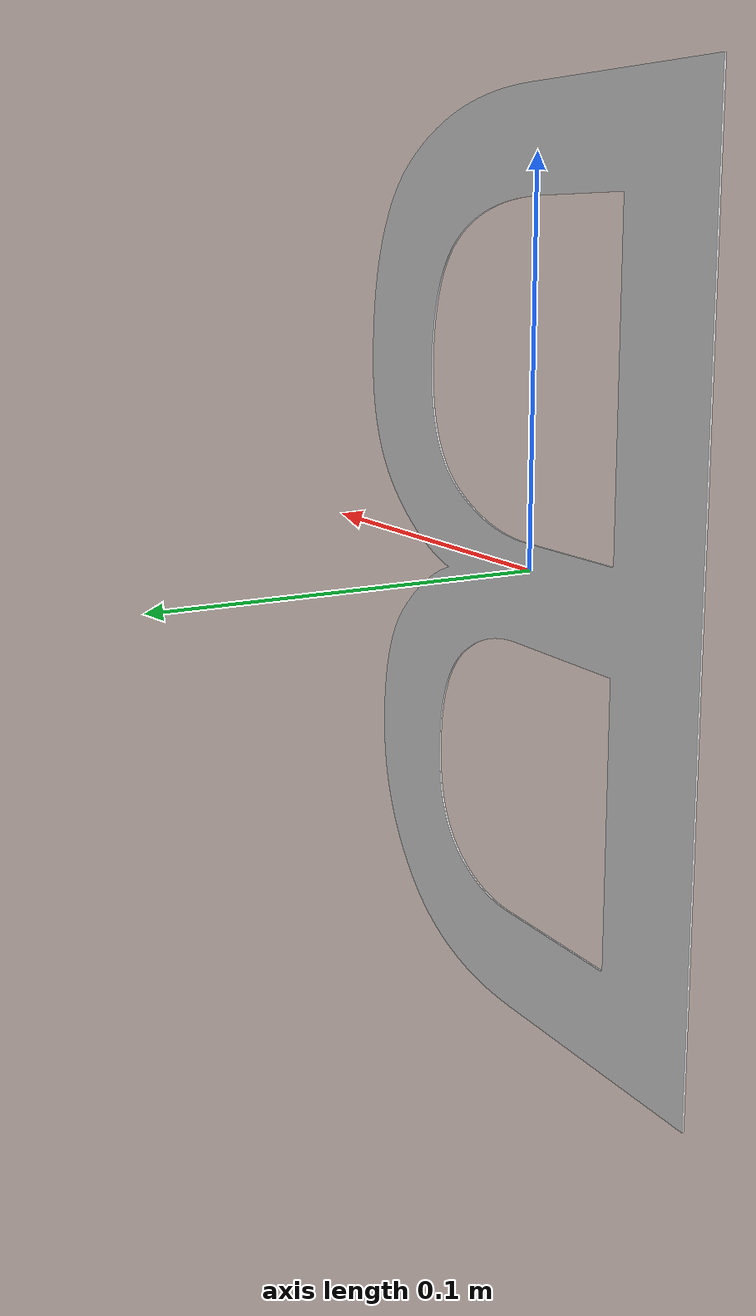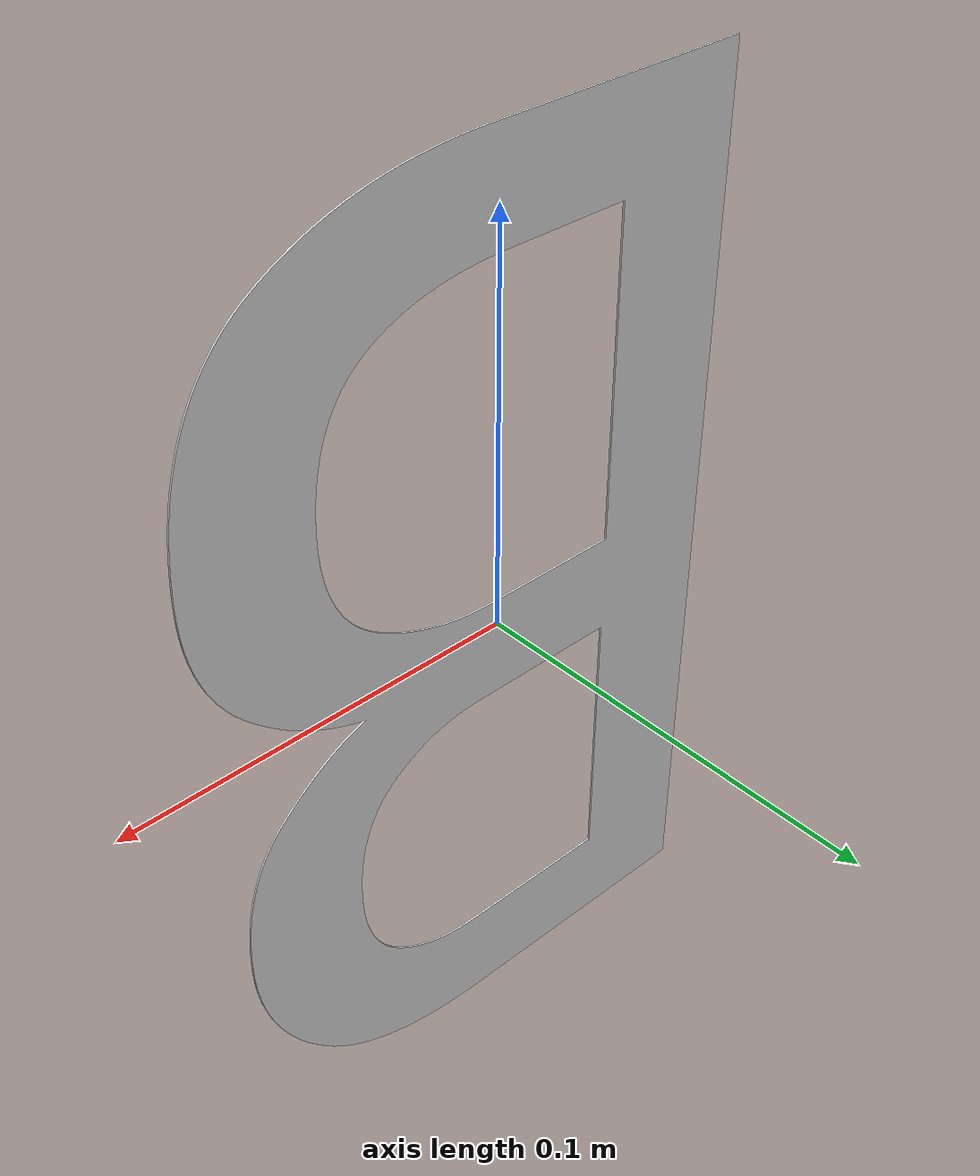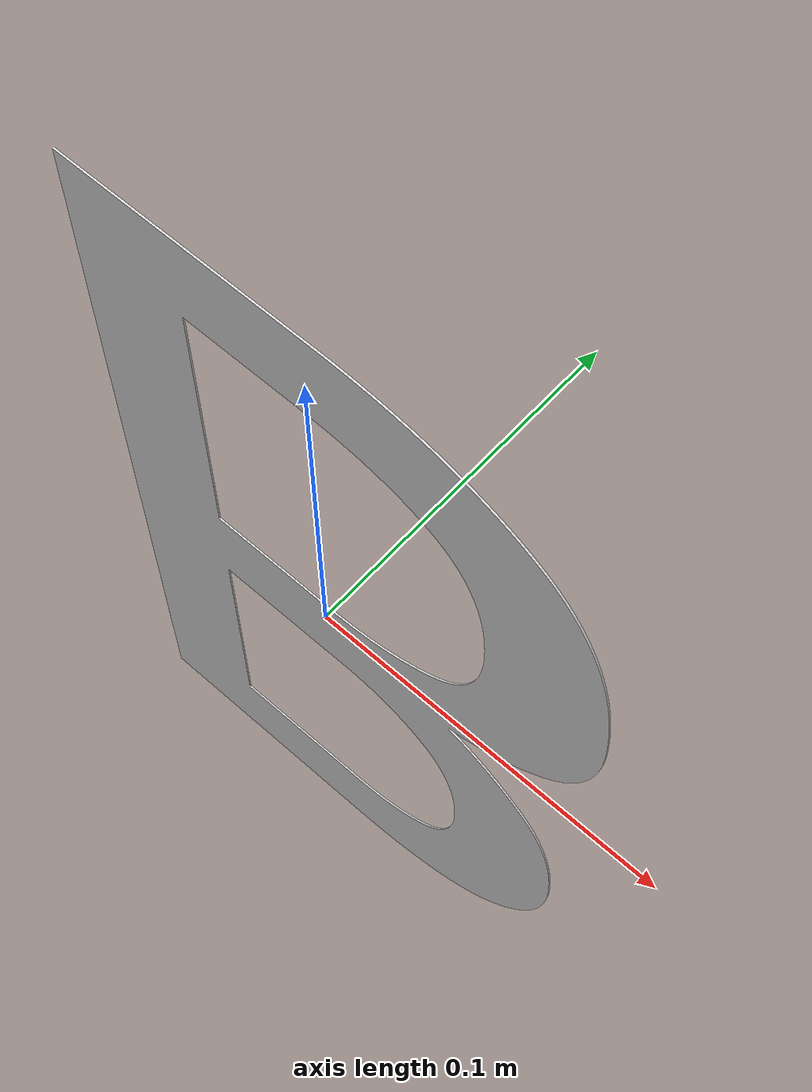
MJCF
<mujoco model="scene_B_edit">
  <compiler angle="degree" meshdir="meshes" texturedir="textures"/>
  <option gravity="0 0 -9.81"/>
  <default>
    <joint armature="0.01" damping="0.5"/>
    <default class="visual">
      <geom contype="0" conaffinity="0" group="2"/>
    </default>
    <default class="collision">
      <geom rgba="0.9 0.9 0.0 0.2" group="3"/>
    </default>
  </default>
  <asset>
    <material name="M_mat0_001" rgba="0.8471 0.8471 0.8471 1.0000"/>
    <mesh name="ImagetostlMesh0" file="ImagetostlMesh0.obj" inertia="shell"/>
  </asset>
  <worldbody>
    <body name="imagetostl_mesh_0" pos="0.000000 0.000000 0.000000">
      <geom type="mesh" mesh="ImagetostlMesh0" class="visual" material="M_mat0_001"/>
      <geom name="imagetostl_mesh_0_aabb" type="box" pos="0.0076 0.0000 -0.0007" size="0.0730 0.0050 0.1166" class="collision"/>
    </body>
  </worldbody>
</mujoco>
